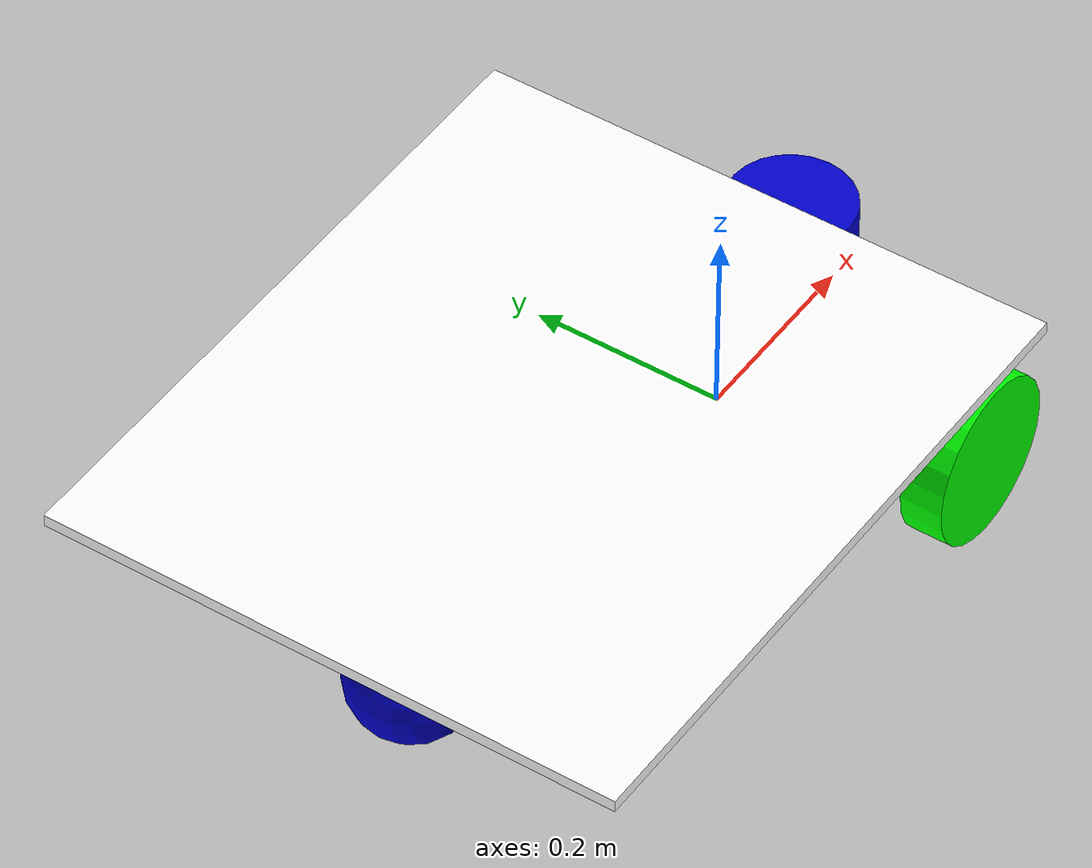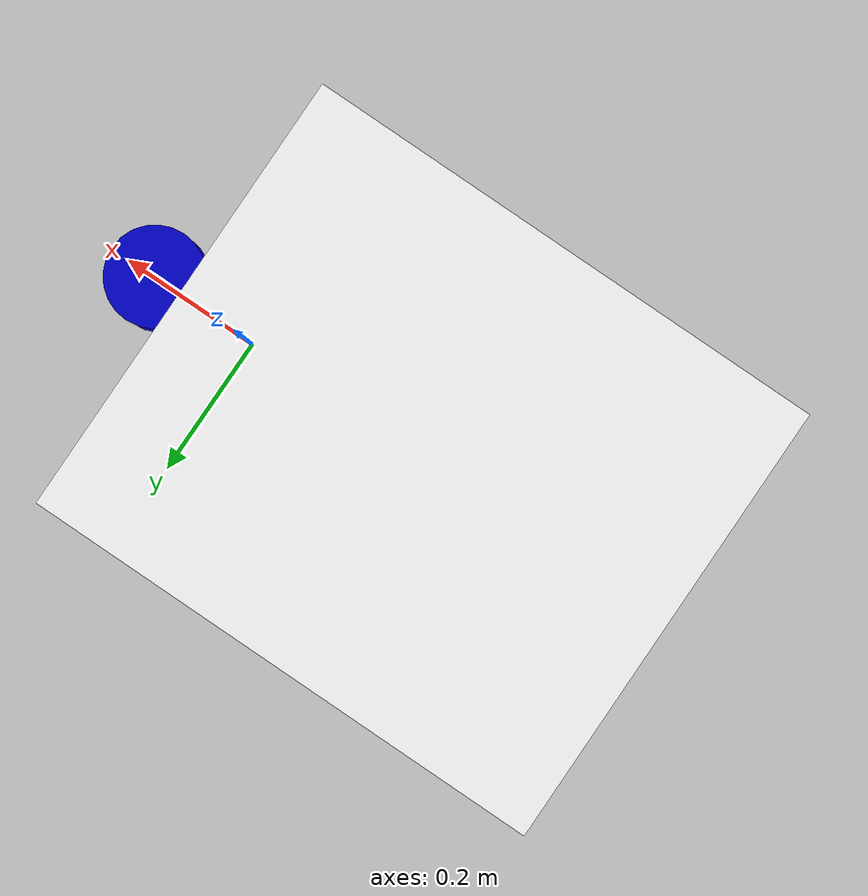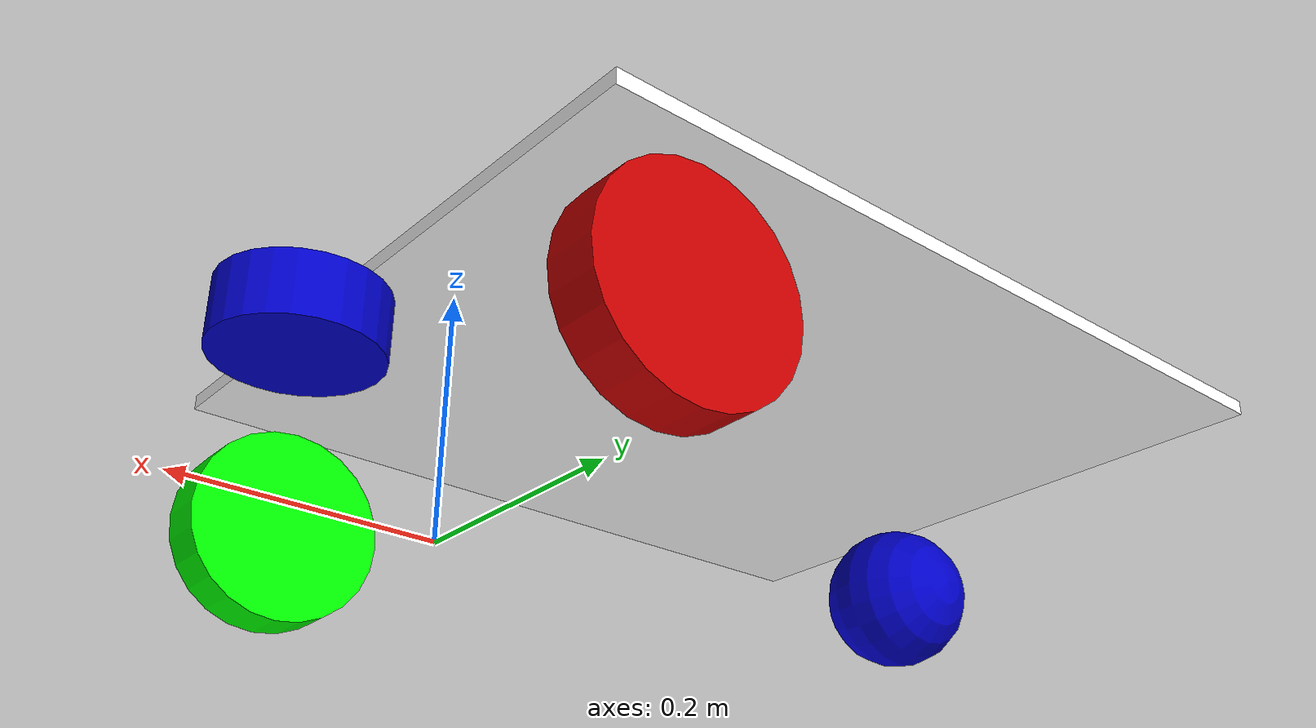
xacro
<?xml version="1.0"?>
<robot xmlns:xacro="http://www.ros.org/wiki/xacro"
 	xmlns:sensor="http://playerstage.sourceforge.net/gazebo/xmlschema/#sensor"
    	xmlns:controller="http://playerstage.sourceforge.net/gazebo/xmlschema/#controller"
    	xmlns:interface="http://playerstage.sourceforge.net/gazebo/xmlschema/#interface"
	name="bigbot">

	<!-- This has base_link as root
		This attaches wheels and laser off chassis Also laser is rotated 90 degrees
		Gazebo
			differential_drive_controller using base_link
			gpu_ray laser
	-->
	<!-- Defining the colors used in this robot -->
	<material name="Black">
	  <color rgba="0.0 0.0 0.0 1.0"/>
	</material>

	<material name="Red">
	  <color rgba="0.8 0.0 0.0 1.0"/>
	</material>

	<material name="White">
	  <color rgba="1.0 1.0 1.0 1.0"/>
	</material>

	<material name="Blue">
	  <color rgba="0.0 0.0 0.8 1.0"/>
	</material>

	<material name="Green">
	  <color rgba="0.0 1.0 0.0 1.0"/>
	</material>

	<!-- Defining parameters-->
	<xacro:property name="mass_base" value="24" />
	<xacro:property name="length_base" value="0.7001" /> <!-- 27 9/16 in-->
	<xacro:property name="width_base" value="0.60325" /><!--23.75 in -->
	<xacro:property name="depth_base" value="0.0127" />

	<xacro:property name="wheel_base" value=" 0.5461" /> <!--23.25 in outside to outside  - 0.0435m width of wheel  -->
	<xacro:property name="length_wheel" value="0.0435" /> <!-- 0.0435 from diagram of wheel-->
	<xacro:property name="radius_wheel" value="0.085" /> <!-- 0.170 (from diagram of wheel)/2 -->
	<xacro:property name="extend_wheel" value="0.0" /> <!-- to be added to collision for axile -->
 	<xacro:property name="M_PI_2" value="1.570796327" />
 	<xacro:property name="M_PI" value="3.1415926535897931" />
	<xacro:property name="radius_caster" value="0.0635" /> <!--5in caster wheel-->

	<xacro:property name="extend_base" value="0.0786" />
	<xacro:property name="base_offset" value="0.1905" />
	<xacro:property name="wheel_offset" value="0.104775" />

        <!-- Define a macro -->
	<xacro:macro name="default_inertial" params="mass">
               <inertial>
                       <mass value="${mass}" />
                       <inertia ixx="1.0" ixy="0.0" ixz="0.0"
                                iyy="1.0" iyz="0.0"
                                izz="1.0" />
               </inertial>
	</xacro:macro>

	<xacro:macro name="cylinder_inertial" params="m r h">
		<inertial>
			 <mass value="${m}" />
			<inertia  ixx="${m*(3*r*r+h*h)/12}" ixy = "0" ixz = "0"
	      		iyy="${m*(3*r*r+h*h)/12}" iyz = "0"
	      		izz="${m*r*r/2}" />
               </inertial>
	</xacro:macro>

	<!-- per https://en.wikipedia.org/wiki/List_of_moments_of_inertia
	  ixx = m/12(h * h  + d * d)
	  iyy = m/12(w * w  + d * d)
	  izz= m/12(w * w  + h * h)
	 -->

	<xacro:macro name="box_inertial" params="m w h d x">
		<inertial>
			 <mass value="${m}" />
			<inertia  ixx="${m*(h*h + d *d)/12}"
			ixy = "0" ixz = "0"
	      		iyy="${m*(w*w+d*d)/12}"
			iyz = "0"
	      		izz="${m*(h*h+w*w)/12}"
			/>

			<origin xyz="${x} 0 0"/>
               </inertial>
	</xacro:macro>

	<!-- base_link is a fictitious link(frame) that is on the ground right below chassis_link origin -->
	<!--I want base_link to be centered between front wheel axiles this should be the point of rotation-->
	<link name="base_link">
		<pose>0 0 0.1 0 0 0</pose>
   		<visual>
			<geometry>
      				<box size="0.001 0.001 0.001"/>
     		</geometry>
			<origin rpy="0 0 0" xyz="0 0 0"/>
			<material name="Red"/>
   		</visual>
		<!--xacro:default_inertial mass="0.0001"/this was throwing an error-->

 	</link>

	<gazebo reference="base_link">
		<material>Gazebo/Red</material>
		<turnGravityOff>false</turnGravityOff>
	</gazebo>

	<joint name="base_link_joint" type="fixed">
		<origin xyz="0 0 ${base_offset}" rpy="0 0 0" />
		<parent link="base_link" />
		<child link="chassis_link" />
	</joint>

	<link name="chassis_link">
   		<visual>
			<geometry>
      				<box size="${length_base} ${width_base} ${depth_base}"/>
     			</geometry>
			<origin xyz="-0.274 0 ${depth_base/2}" rpy="0 0 0" />
			<material name="White"/>
   		</visual>
		<collision>
			<geometry>
       				<box size="${length_base +extend_base} ${width_base+extend_base} ${depth_base+extend_base}"/>
			</geometry>
			<origin rpy="0 0 0" xyz="-0.274 0 0"/>
		</collision>

		<xacro:box_inertial m="${mass_base}" w="${width_base}" h="${length_base}" d="${depth_base}"  x="-0.274" />
 	</link>

	<gazebo reference="chassis_link">
	    <material>Gazebo/White</material>
	    <turnGravityOff>false</turnGravityOff>
	</gazebo>

 	<link name="left_wheel">
   		<visual>
     			<geometry>
       				<cylinder length="${length_wheel}" radius="${radius_wheel}"/>
     			</geometry>

			<origin rpy="0 0 0" xyz="0 0 0"/>
   			<material name="Red"/>
		</visual>
		<collision>
			<geometry>
       				<cylinder length="${length_wheel+ extend_wheel}" radius="${radius_wheel}"/>
			</geometry>
		</collision>
		<xacro:cylinder_inertial m="1" r="${radius_wheel}" h="${length_wheel}"/>
 	</link>

	<gazebo reference="left_wheel">
		<turnGravityOff>false</turnGravityOff>
        <material>Gazebo/Red</material>
	</gazebo>

 	<link name="right_wheel">
   		<visual>
     			<geometry>
       				<cylinder length="${length_wheel}" radius="${radius_wheel}"/>
     			</geometry>
			<origin rpy="0 0 0" xyz="0 0 0"/>
   			<material name="Green"/>
   		</visual>
		<collision>
			<geometry>
       				<cylinder length="${length_wheel+ extend_wheel}" radius="${radius_wheel}"/>
			</geometry>
		</collision>
		<xacro:cylinder_inertial m="1" r="${radius_wheel}" h="${length_wheel}"/>

 	</link>

     <gazebo reference="right_wheel">
	    <turnGravityOff>false</turnGravityOff>
        <material>Gazebo/Green</material>
     </gazebo>

	 <joint name="base_to_left_wheel" type="continuous">
		<parent link="chassis_link"/>
		<child link="left_wheel"/>
		<origin rpy="1.5707 0 0" xyz="0 ${wheel_base/2} ${-wheel_offset}"/>
		<axis xyz="0 0 1" />
	 </joint>

	 <joint name="base_to_right_wheel" type="continuous">
		<parent link="chassis_link"/>
		<child link="right_wheel"/>
		<origin rpy="1.5707 0 0" xyz="0 ${-wheel_base/2} ${-wheel_offset}"/>
		<axis xyz="0 0 1" />
	 </joint>

	<!--Caster Back  -->

    <link name="caster_link">
      <visual>
        <origin xyz="0 0 0" rpy="${M_PI/2} 0 0" />
        <geometry>
	      <sphere radius="${radius_caster}" />
        </geometry>
        <material name="Blue" />
      </visual>
      <collision>
        <geometry>
    	<sphere radius="${radius_caster}" />
        </geometry>
        <origin xyz="0 0. 0" rpy="${M_PI/2} 0 0" />
      </collision>
      <inertial>
        <mass value="1" />
        <origin xyz="0 0 0" />
        <inertia ixx="0.001" ixy="0.0" ixz="0.0"
                 iyy="0.001" iyz="0.0"
                 izz="0.001" />
      </inertial>
    </link>

   <joint name="caster_joint" type="fixed">
      <parent link="chassis_link"/>
      <child link="caster_link"/>
	  <origin xyz="-0.4948 0.0 ${-(wheel_offset + 0.020)}" rpy="0 0 0" />
   </joint>

<!-- R was ${-M_PI/2} -->

	<gazebo reference="caster_link">
		<turnGravityOff>false</turnGravityOff>
		<material>Gazebo/Blue</material>
	</gazebo>

  <!-- laser joint -->
  <!-- laser is 4 25/32 in front of wheel =.12144m-->
  <!-- but attaching laster off chasis so need to add .22-->
  <joint name="laser_joint" type="fixed">
    <origin xyz="0.12144 0 -0.05715" rpy="0 0 0"/>
    <parent link="chassis_link"/>
    <axis xyz="0 1 0" />
    <child link="laser_point"/>
  </joint>

  <!-- laser joint -->
  <joint name="laser_rotate" type="fixed">
    <origin xyz="0 0 0" rpy="3.14 0 -1.57"/>
    <parent link="laser_point"/>
    <axis xyz="0 1 0" />
    <child link="laser_frame"/>
  </joint>

  <link name="laser_point">
    <collision>
      <origin xyz="0 0 0" rpy="0 0 0"/>
      <geometry>
        <cylinder length=".0001" radius="0.0001"/>
      </geometry>
    </collision>

    <visual>
      <origin xyz="0 0 0" rpy="0 0 0"/>
      <geometry>
        <cylinder length=".0001" radius="0.0001"/>
      </geometry>
      <material name="Blue" />
    </visual>

    <inertial>
      <mass value="1e-5" />
      <origin xyz="0 0 0" rpy="0 0 0"/>
      <inertia ixx="1e-6" ixy="0" ixz="0" iyy="1e-6" iyz="0" izz="1e-6" />
    </inertial>
  </link>

  <!-- sweep Laser -->
  <link name="laser_frame">
    <collision>
      <origin xyz="0 0 0" rpy="0 0 0"/>
      <geometry>
        <cylinder length=".0508" radius="0.0635"/>
      </geometry>
    </collision>

    <visual>
      <origin xyz="0 0 0" rpy="0 0 0"/>
      <geometry>
        <cylinder length=".0508" radius="0.0635"/>
      </geometry>
      <material name="Blue" />
    </visual>

    <inertial>
      <mass value="1e-5" />
      <origin xyz="0 0 0" rpy="0 0 0"/>
      <inertia ixx="1e-6" ixy="0" ixz="0" iyy="1e-6" iyz="0" izz="1e-6" />
    </inertial>
  </link>

  <!-- Differential drive controller  -->
  <gazebo>
    <plugin name="differential_drive_controller" filename="libgazebo_ros_diff_drive.so">

      <left_joint>base_to_left_wheel</left_joint>
      <right_joint>base_to_right_wheel</right_joint>
      <wheel_separation>${wheel_base}</wheel_separation>
      <wheel_diameter>${2*radius_wheel}</wheel_diameter>

      <!-- limits -->
      <max_wheel_torque>30</max_wheel_torque>
      <max_wheel_acceleration>1.8</max_wheel_acceleration>

      <!-- output -->
      <publish_odom>true</publish_odom>
      <publish_odom_tf>true</publish_odom_tf>

      <odometry_frame>odom</odometry_frame>
      <robot_base_frame>base_link</robot_base_frame>

    </plugin>
</gazebo>

  <gazebo reference="laser_frame">
    <sensor name="sensor_ray" type="ray">
      <pose>0 0 0 0 0 0</pose>
      <update_rate>100</update_rate>

      <always_on>true</always_on>
      <visualize>true</visualize>

      <ray>
        <scan>
          <horizontal>
            <samples>720</samples>
            <resolution>1</resolution>
            <min_angle>-3.14159</min_angle>
            <max_angle>3.14159</max_angle>
          </horizontal>
        </scan>
        <range>
          <min>0.10</min>
          <max>12.0</max>
          <resolution>0.01</resolution>
        </range>
        <noise>
          <type>gaussian</type>
          <mean>0.0</mean>
          <stddev>0.01</stddev>
        </noise>
      </ray>
      <plugin filename="libgazebo_ros_ray_sensor.so" name="laser">
        <topicName>/scan</topicName>
        <frameName>laser_frame</frameName>
        <output_type>sensor_msgs/LaserScan</output_type>
      </plugin>
    </sensor>
  </gazebo>

</robot>
